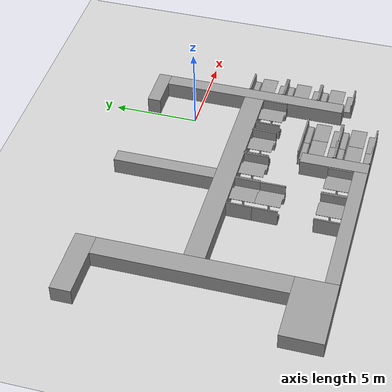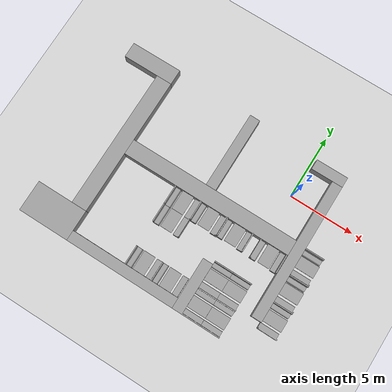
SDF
<sdf version="1.6">
 <world name="default">
  <model name="ground_plane">
   <static>1</static>
   <link name="link">
    <collision name="collision">
     <geometry><plane><normal>0 0 1</normal><size>100 100</size></plane></geometry>
     <surface><friction><ode><mu>100</mu><mu2>50</mu2></ode></friction></surface>
    </collision>
    <visual name="visual">
     <cast_shadows>0</cast_shadows>
     <geometry><plane><normal>0 0 1</normal><size>100 100</size></plane></geometry>
     <material>
      <script><uri>file://media/materials/scripts/gazebo.material</uri><name>Gazebo/Grey</name></script>
     </material>
    </visual>
   </link>
  </model>
  <model name="table_9">
   <link name="link_0">
    <inertial>
     <mass>1</mass>
     <inertia>
      <ixx>0.166667</ixx>
      <ixy>0</ixy>
      <ixz>0</ixz>
      <iyy>0.166667</iyy>
      <iyz>0</iyz>
      <izz>0.166667</izz>
     </inertia>
    </inertial>
    <visual name="visual">
     <pose>-1.9 -1.17 0 0 -0 0</pose>
     <geometry><mesh><uri>model://table/mesh/table.dae</uri><scale>0.6 0.6 0.6</scale></mesh></geometry>
     <material>
      <lighting>1</lighting>
      <script><uri>file://media/materials/scripts/gazebo.material</uri><name>Gazebo/Grey</name></script>
      <shader type="pixel"><normal_map>__default__</normal_map></shader>
      <ambient>0.3 0.3 0.3 1</ambient>
      <diffuse>0.7 0.7 0.7 1</diffuse>
      <specular>0.01 0.01 0.01 1</specular>
      <emissive>0 0 0 1</emissive>
     </material>
    </visual>
    <collision name="collision">
     <geometry><box><size>2.2 1.5 1.1</size></box></geometry>
     <surface>
      <friction>
       <ode><mu>1</mu><mu2>1</mu2><fdir1>0 0 0</fdir1><slip1>0</slip1><slip2>0</slip2></ode>
       <torsional>
        <coefficient>1</coefficient>
        <patch_radius>0</patch_radius>
        <surface_radius>0</surface_radius>
        <use_patch_radius>1</use_patch_radius>
        <ode><slip>0</slip></ode>
       </torsional>
      </friction>
      <bounce><restitution_coefficient>0</restitution_coefficient><threshold>1e+06</threshold></bounce>
      <contact>
       <collide_without_contact>0</collide_without_contact>
       <collide_without_contact_bitmask>1</collide_without_contact_bitmask>
       <collide_bitmask>1</collide_bitmask>
       <ode>
        <soft_cfm>0</soft_cfm>
        <soft_erp>0.2</soft_erp>
        <kp>1e+13</kp>
        <kd>1</kd>
        <max_vel>0.01</max_vel>
        <min_depth>0</min_depth>
       </ode>
       <bullet>
        <split_impulse>1</split_impulse>
        <split_impulse_penetration_threshold>-0.01</split_impulse_penetration_threshold>
        <soft_cfm>0</soft_cfm>
        <soft_erp>0.2</soft_erp>
        <kp>1e+13</kp>
        <kd>1</kd>
       </bullet>
      </contact>
     </surface>
    </collision>
   </link>
   <static>1</static>
   <pose>-6.26938 -4.6265 0 0 -0 0</pose>
  </model>
  <model name="table_10">
   <link name="link_0">
    <inertial>
     <mass>1</mass>
     <inertia>
      <ixx>0.166667</ixx>
      <ixy>0</ixy>
      <ixz>0</ixz>
      <iyy>0.166667</iyy>
      <iyz>0</iyz>
      <izz>0.166667</izz>
     </inertia>
    </inertial>
    <visual name="visual">
     <pose>-1.9 -1.17 0 0 -0 0</pose>
     <geometry><mesh><uri>model://table/mesh/table.dae</uri><scale>0.6 0.6 0.6</scale></mesh></geometry>
     <material>
      <lighting>1</lighting>
      <script><uri>file://media/materials/scripts/gazebo.material</uri><name>Gazebo/Grey</name></script>
      <shader type="pixel"><normal_map>__default__</normal_map></shader>
      <ambient>0.3 0.3 0.3 1</ambient>
      <diffuse>0.7 0.7 0.7 1</diffuse>
      <specular>0.01 0.01 0.01 1</specular>
      <emissive>0 0 0 1</emissive>
     </material>
    </visual>
    <collision name="collision">
     <geometry><box><size>2.2 1.5 1.1</size></box></geometry>
     <surface>
      <friction>
       <ode><mu>1</mu><mu2>1</mu2><fdir1>0 0 0</fdir1><slip1>0</slip1><slip2>0</slip2></ode>
       <torsional>
        <coefficient>1</coefficient>
        <patch_radius>0</patch_radius>
        <surface_radius>0</surface_radius>
        <use_patch_radius>1</use_patch_radius>
        <ode><slip>0</slip></ode>
       </torsional>
      </friction>
      <bounce><restitution_coefficient>0</restitution_coefficient><threshold>1e+06</threshold></bounce>
      <contact>
       <collide_without_contact>0</collide_without_contact>
       <collide_without_contact_bitmask>1</collide_without_contact_bitmask>
       <collide_bitmask>1</collide_bitmask>
       <ode>
        <soft_cfm>0</soft_cfm>
        <soft_erp>0.2</soft_erp>
        <kp>1e+13</kp>
        <kd>1</kd>
        <max_vel>0.01</max_vel>
        <min_depth>0</min_depth>
       </ode>
       <bullet>
        <split_impulse>1</split_impulse>
        <split_impulse_penetration_threshold>-0.01</split_impulse_penetration_threshold>
        <soft_cfm>0</soft_cfm>
        <soft_erp>0.2</soft_erp>
        <kp>1e+13</kp>
        <kd>1</kd>
       </bullet>
      </contact>
     </surface>
    </collision>
   </link>
   <static>1</static>
   <pose>-6.26919 -6.11225 0 0 -0 0</pose>
  </model>
  <model name="table_11">
   <link name="link_0">
    <inertial>
     <mass>1</mass>
     <inertia>
      <ixx>0.166667</ixx>
      <ixy>0</ixy>
      <ixz>0</ixz>
      <iyy>0.166667</iyy>
      <iyz>0</iyz>
      <izz>0.166667</izz>
     </inertia>
    </inertial>
    <visual name="visual">
     <pose>-1.9 -1.17 0 0 -0 0</pose>
     <geometry><mesh><uri>model://table/mesh/table.dae</uri><scale>0.6 0.6 0.6</scale></mesh></geometry>
     <material>
      <lighting>1</lighting>
      <script><uri>file://media/materials/scripts/gazebo.material</uri><name>Gazebo/Grey</name></script>
      <shader type="pixel"><normal_map>__default__</normal_map></shader>
      <ambient>0.3 0.3 0.3 1</ambient>
      <diffuse>0.7 0.7 0.7 1</diffuse>
      <specular>0.01 0.01 0.01 1</specular>
      <emissive>0 0 0 1</emissive>
     </material>
    </visual>
    <collision name="collision">
     <geometry><box><size>2.2 1.5 1.1</size></box></geometry>
     <surface>
      <friction>
       <ode><mu>1</mu><mu2>1</mu2><fdir1>0 0 0</fdir1><slip1>0</slip1><slip2>0</slip2></ode>
       <torsional>
        <coefficient>1</coefficient>
        <patch_radius>0</patch_radius>
        <surface_radius>0</surface_radius>
        <use_patch_radius>1</use_patch_radius>
        <ode><slip>0</slip></ode>
       </torsional>
      </friction>
      <bounce><restitution_coefficient>0</restitution_coefficient><threshold>1e+06</threshold></bounce>
      <contact>
       <collide_without_contact>0</collide_without_contact>
       <collide_without_contact_bitmask>1</collide_without_contact_bitmask>
       <collide_bitmask>1</collide_bitmask>
       <ode>
        <soft_cfm>0</soft_cfm>
        <soft_erp>0.2</soft_erp>
        <kp>1e+13</kp>
        <kd>1</kd>
        <max_vel>0.01</max_vel>
        <min_depth>0</min_depth>
       </ode>
       <bullet>
        <split_impulse>1</split_impulse>
        <split_impulse_penetration_threshold>-0.01</split_impulse_penetration_threshold>
        <soft_cfm>0</soft_cfm>
        <soft_erp>0.2</soft_erp>
        <kp>1e+13</kp>
        <kd>1</kd>
       </bullet>
      </contact>
     </surface>
    </collision>
   </link>
   <static>1</static>
   <pose>-6.26952 -9.62125 0 0 -0 0</pose>
  </model>
  <model name="table_12">
   <link name="link_0">
    <inertial>
     <mass>1</mass>
     <inertia>
      <ixx>0.166667</ixx>
      <ixy>0</ixy>
      <ixz>0</ixz>
      <iyy>0.166667</iyy>
      <iyz>0</iyz>
      <izz>0.166667</izz>
     </inertia>
    </inertial>
    <visual name="visual">
     <pose>-1.9 -1.17 0 0 -0 0</pose>
     <geometry><mesh><uri>model://table/mesh/table.dae</uri><scale>0.6 0.6 0.6</scale></mesh></geometry>
     <material>
      <lighting>1</lighting>
      <script><uri>file://media/materials/scripts/gazebo.material</uri><name>Gazebo/Grey</name></script>
      <shader type="pixel"><normal_map>__default__</normal_map></shader>
      <ambient>0.3 0.3 0.3 1</ambient>
      <diffuse>0.7 0.7 0.7 1</diffuse>
      <specular>0.01 0.01 0.01 1</specular>
      <emissive>0 0 0 1</emissive>
     </material>
    </visual>
    <collision name="collision">
     <geometry><box><size>2.2 1.5 1.1</size></box></geometry>
     <surface>
      <friction>
       <ode><mu>1</mu><mu2>1</mu2><fdir1>0 0 0</fdir1><slip1>0</slip1><slip2>0</slip2></ode>
       <torsional>
        <coefficient>1</coefficient>
        <patch_radius>0</patch_radius>
        <surface_radius>0</surface_radius>
        <use_patch_radius>1</use_patch_radius>
        <ode><slip>0</slip></ode>
       </torsional>
      </friction>
      <bounce><restitution_coefficient>0</restitution_coefficient><threshold>1e+06</threshold></bounce>
      <contact>
       <collide_without_contact>0</collide_without_contact>
       <collide_without_contact_bitmask>1</collide_without_contact_bitmask>
       <collide_bitmask>1</collide_bitmask>
       <ode>
        <soft_cfm>0</soft_cfm>
        <soft_erp>0.2</soft_erp>
        <kp>1e+13</kp>
        <kd>1</kd>
        <max_vel>0.01</max_vel>
        <min_depth>0</min_depth>
       </ode>
       <bullet>
        <split_impulse>1</split_impulse>
        <split_impulse_penetration_threshold>-0.01</split_impulse_penetration_threshold>
        <soft_cfm>0</soft_cfm>
        <soft_erp>0.2</soft_erp>
        <kp>1e+13</kp>
        <kd>1</kd>
       </bullet>
      </contact>
     </surface>
    </collision>
   </link>
   <static>1</static>
   <pose>-4.12488 -9.62018 0 0 -0 0</pose>
  </model>
  <model name="table_13">
   <link name="link_0">
    <inertial>
     <mass>1</mass>
     <inertia>
      <ixx>0.166667</ixx>
      <ixy>0</ixy>
      <ixz>0</ixz>
      <iyy>0.166667</iyy>
      <iyz>0</iyz>
      <izz>0.166667</izz>
     </inertia>
    </inertial>
    <visual name="visual">
     <pose>-1.9 -1.17 0 0 -0 0</pose>
     <geometry><mesh><uri>model://table/mesh/table.dae</uri><scale>0.6 0.6 0.6</scale></mesh></geometry>
     <material>
      <lighting>1</lighting>
      <script><uri>file://media/materials/scripts/gazebo.material</uri><name>Gazebo/Grey</name></script>
      <shader type="pixel"><normal_map>__default__</normal_map></shader>
      <ambient>0.3 0.3 0.3 1</ambient>
      <diffuse>0.7 0.7 0.7 1</diffuse>
      <specular>0.01 0.01 0.01 1</specular>
      <emissive>0 0 0 1</emissive>
     </material>
    </visual>
    <collision name="collision">
     <geometry><box><size>2.2 1.5 1.1</size></box></geometry>
     <surface>
      <friction>
       <ode><mu>1</mu><mu2>1</mu2><fdir1>0 0 0</fdir1><slip1>0</slip1><slip2>0</slip2></ode>
       <torsional>
        <coefficient>1</coefficient>
        <patch_radius>0</patch_radius>
        <surface_radius>0</surface_radius>
        <use_patch_radius>1</use_patch_radius>
        <ode><slip>0</slip></ode>
       </torsional>
      </friction>
      <bounce><restitution_coefficient>0</restitution_coefficient><threshold>1e+06</threshold></bounce>
      <contact>
       <collide_without_contact>0</collide_without_contact>
       <collide_without_contact_bitmask>1</collide_without_contact_bitmask>
       <collide_bitmask>1</collide_bitmask>
       <ode>
        <soft_cfm>0</soft_cfm>
        <soft_erp>0.2</soft_erp>
        <kp>1e+13</kp>
        <kd>1</kd>
        <max_vel>0.01</max_vel>
        <min_depth>0</min_depth>
       </ode>
       <bullet>
        <split_impulse>1</split_impulse>
        <split_impulse_penetration_threshold>-0.01</split_impulse_penetration_threshold>
        <soft_cfm>0</soft_cfm>
        <soft_erp>0.2</soft_erp>
        <kp>1e+13</kp>
        <kd>1</kd>
       </bullet>
      </contact>
     </surface>
    </collision>
   </link>
   <static>1</static>
   <pose>-4.12506 -4.62605 0 0 -0 0</pose>
  </model>
  <model name="path">
   <link name="Wall_18">
    <pose>-12.5035 0.003409 0 0 -0 1.5708</pose>
    <inertial>
     <mass>1</mass>
     <inertia><ixx>1</ixx><ixy>0</ixy><ixz>0</ixz><iyy>1</iyy><iyz>0</iyz><izz>1</izz></inertia>
    </inertial>
    <visual name="Wall_18_Visual">
     <pose>0 0 0.5 0 -0 0</pose>
     <geometry><box><size>11 1.2 1</size></box></geometry>
     <material>
      <script><uri>file://media/materials/scripts/gazebo.material</uri><name>Gazebo/Grey</name></script>
      <ambient>1 1 1 1</ambient>
      <shader type="pixel"><normal_map>__default__</normal_map></shader>
      <diffuse>0.7 0.7 0.7 1</diffuse>
      <specular>0.01 0.01 0.01 1</specular>
      <emissive>0 0 0 1</emissive>
     </material>
     <meta><layer>0</layer></meta>
    </visual>
    <collision name="Wall_18_Collision">
     <pose>0 0 0.5 0 -0 0</pose>
     <geometry><box><size>11 1.2 1</size></box></geometry>
     <surface>
      <friction>
       <ode><mu>1</mu><mu2>1</mu2><fdir1>0 0 0</fdir1><slip1>0</slip1><slip2>0</slip2></ode>
       <torsional>
        <coefficient>1</coefficient>
        <patch_radius>0</patch_radius>
        <surface_radius>0</surface_radius>
        <use_patch_radius>1</use_patch_radius>
        <ode><slip>0</slip></ode>
       </torsional>
      </friction>
      <bounce><restitution_coefficient>0</restitution_coefficient><threshold>1e+06</threshold></bounce>
      <contact>
       <collide_without_contact>0</collide_without_contact>
       <collide_without_contact_bitmask>1</collide_without_contact_bitmask>
       <collide_bitmask>1</collide_bitmask>
       <ode>
        <soft_cfm>0</soft_cfm>
        <soft_erp>0.2</soft_erp>
        <kp>1e+13</kp>
        <kd>1</kd>
        <max_vel>0.01</max_vel>
        <min_depth>0</min_depth>
       </ode>
       <bullet>
        <split_impulse>1</split_impulse>
        <split_impulse_penetration_threshold>-0.01</split_impulse_penetration_threshold>
        <soft_cfm>0</soft_cfm>
        <soft_erp>0.2</soft_erp>
        <kp>1e+13</kp>
        <kd>1</kd>
       </bullet>
      </contact>
     </surface>
    </collision>
   </link>
   <link name="Wall_20">
    <pose>-5.15319 -0.016904 0 0 0 -0.000489</pose>
    <inertial>
     <mass>1</mass>
     <inertia><ixx>1</ixx><ixy>0</ixy><ixz>0</ixz><iyy>1</iyy><iyz>0</iyz><izz>1</izz></inertia>
    </inertial>
    <visual name="Wall_20_Visual">
     <pose>0 0 0.5 0 -0 0</pose>
     <geometry><box><size>13.5 1.2 1</size></box></geometry>
     <material>
      <script><uri>file://media/materials/scripts/gazebo.material</uri><name>Gazebo/Grey</name></script>
      <ambient>1 1 1 1</ambient>
      <shader type="pixel"><normal_map>__default__</normal_map></shader>
      <diffuse>0.7 0.7 0.7 1</diffuse>
      <specular>0.01 0.01 0.01 1</specular>
      <emissive>0 0 0 1</emissive>
     </material>
     <meta><layer>0</layer></meta>
    </visual>
    <collision name="Wall_20_Collision">
     <pose>0 0 0.5 0 -0 0</pose>
     <geometry><box><size>13.5 1.2 1</size></box></geometry>
     <surface>
      <friction>
       <ode><mu>1</mu><mu2>1</mu2><fdir1>0 0 0</fdir1><slip1>0</slip1><slip2>0</slip2></ode>
       <torsional>
        <coefficient>1</coefficient>
        <patch_radius>0</patch_radius>
        <surface_radius>0</surface_radius>
        <use_patch_radius>1</use_patch_radius>
        <ode><slip>0</slip></ode>
       </torsional>
      </friction>
      <bounce><restitution_coefficient>0</restitution_coefficient><threshold>1e+06</threshold></bounce>
      <contact>
       <collide_without_contact>0</collide_without_contact>
       <collide_without_contact_bitmask>1</collide_without_contact_bitmask>
       <collide_bitmask>1</collide_bitmask>
       <ode>
        <soft_cfm>0</soft_cfm>
        <soft_erp>0.2</soft_erp>
        <kp>1e+13</kp>
        <kd>1</kd>
        <max_vel>0.01</max_vel>
        <min_depth>0</min_depth>
       </ode>
       <bullet>
        <split_impulse>1</split_impulse>
        <split_impulse_penetration_threshold>-0.01</split_impulse_penetration_threshold>
        <soft_cfm>0</soft_cfm>
        <soft_erp>0.2</soft_erp>
        <kp>1e+13</kp>
        <kd>1</kd>
       </bullet>
      </contact>
     </surface>
    </collision>
   </link>
   <link name="Wall_21">
    <pose>1.99706 0.024718 0 0 -0 1.57072</pose>
    <inertial>
     <mass>1</mass>
     <inertia><ixx>1</ixx><ixy>0</ixy><ixz>0</ixz><iyy>1</iyy><iyz>0</iyz><izz>1</izz></inertia>
    </inertial>
    <visual name="Wall_21_Visual">
     <pose>0 0 0.5 0 -0 0</pose>
     <geometry><box><size>11 0.8 1</size></box></geometry>
     <material>
      <script><uri>file://media/materials/scripts/gazebo.material</uri><name>Gazebo/Grey</name></script>
      <ambient>1 1 1 1</ambient>
      <shader type="pixel"><normal_map>__default__</normal_map></shader>
      <diffuse>0.7 0.7 0.7 1</diffuse>
      <specular>0.01 0.01 0.01 1</specular>
      <emissive>0 0 0 1</emissive>
     </material>
     <meta><layer>0</layer></meta>
    </visual>
    <collision name="Wall_21_Collision">
     <pose>0 0 0.5 0 -0 0</pose>
     <geometry><box><size>11 0.8 1</size></box></geometry>
     <surface>
      <friction>
       <ode><mu>1</mu><mu2>1</mu2><fdir1>0 0 0</fdir1><slip1>0</slip1><slip2>0</slip2></ode>
       <torsional>
        <coefficient>1</coefficient>
        <patch_radius>0</patch_radius>
        <surface_radius>0</surface_radius>
        <use_patch_radius>1</use_patch_radius>
        <ode><slip>0</slip></ode>
       </torsional>
      </friction>
      <bounce><restitution_coefficient>0</restitution_coefficient><threshold>1e+06</threshold></bounce>
      <contact>
       <collide_without_contact>0</collide_without_contact>
       <collide_without_contact_bitmask>1</collide_without_contact_bitmask>
       <collide_bitmask>1</collide_bitmask>
       <ode>
        <soft_cfm>0</soft_cfm>
        <soft_erp>0.2</soft_erp>
        <kp>1e+13</kp>
        <kd>1</kd>
        <max_vel>0.01</max_vel>
        <min_depth>0</min_depth>
       </ode>
       <bullet>
        <split_impulse>1</split_impulse>
        <split_impulse_penetration_threshold>-0.01</split_impulse_penetration_threshold>
        <soft_cfm>0</soft_cfm>
        <soft_erp>0.2</soft_erp>
        <kp>1e+13</kp>
        <kd>1</kd>
       </bullet>
      </contact>
     </surface>
    </collision>
   </link>
   <link name="Wall_25">
    <pose>-5.42538 3.58343 0 0 -0 1.5708</pose>
    <inertial>
     <mass>1</mass>
     <inertia><ixx>1</ixx><ixy>0</ixy><ixz>0</ixz><iyy>1</iyy><iyz>0</iyz><izz>1</izz></inertia>
    </inertial>
    <visual name="Wall_25_Visual">
     <pose>0 0 0.5 0 -0 0</pose>
     <geometry><box><size>6 0.8 1</size></box></geometry>
     <material>
      <script><uri>file://media/materials/scripts/gazebo.material</uri><name>Gazebo/Grey</name></script>
      <ambient>1 1 1 1</ambient>
      <shader type="pixel"><normal_map>__default__</normal_map></shader>
      <diffuse>0.7 0.7 0.7 1</diffuse>
      <specular>0.01 0.01 0.01 1</specular>
      <emissive>0 0 0 1</emissive>
     </material>
     <meta><layer>0</layer></meta>
    </visual>
    <collision name="Wall_25_Collision">
     <pose>0 0 0.5 0 -0 0</pose>
     <geometry><box><size>6 0.8 1</size></box></geometry>
     <surface>
      <friction>
       <ode><mu>1</mu><mu2>1</mu2><fdir1>0 0 0</fdir1><slip1>0</slip1><slip2>0</slip2></ode>
       <torsional>
        <coefficient>1</coefficient>
        <patch_radius>0</patch_radius>
        <surface_radius>0</surface_radius>
        <use_patch_radius>1</use_patch_radius>
        <ode><slip>0</slip></ode>
       </torsional>
      </friction>
      <bounce><restitution_coefficient>0</restitution_coefficient><threshold>1e+06</threshold></bounce>
      <contact>
       <collide_without_contact>0</collide_without_contact>
       <collide_without_contact_bitmask>1</collide_without_contact_bitmask>
       <collide_bitmask>1</collide_bitmask>
       <ode>
        <soft_cfm>0</soft_cfm>
        <soft_erp>0.2</soft_erp>
        <kp>1e+13</kp>
        <kd>1</kd>
        <max_vel>0.01</max_vel>
        <min_depth>0</min_depth>
       </ode>
       <bullet>
        <split_impulse>1</split_impulse>
        <split_impulse_penetration_threshold>-0.01</split_impulse_penetration_threshold>
        <soft_cfm>0</soft_cfm>
        <soft_erp>0.2</soft_erp>
        <kp>1e+13</kp>
        <kd>1</kd>
       </bullet>
      </contact>
     </surface>
    </collision>
   </link>
   <link name="Wall_27">
    <pose>-7.5785 -7.49658 0 0 -0 0</pose>
    <inertial>
     <mass>1</mass>
     <inertia><ixx>1</ixx><ixy>0</ixy><ixz>0</ixz><iyy>1</iyy><iyz>0</iyz><izz>1</izz></inertia>
    </inertial>
    <visual name="Wall_27_Visual">
     <pose>0 0 0.5 0 -0 0</pose>
     <geometry><box><size>8.65 0.8 1</size></box></geometry>
     <material>
      <script><uri>file://media/materials/scripts/gazebo.material</uri><name>Gazebo/Grey</name></script>
      <ambient>1 1 1 1</ambient>
      <shader type="pixel"><normal_map>__default__</normal_map></shader>
      <diffuse>0.7 0.7 0.7 1</diffuse>
      <specular>0.01 0.01 0.01 1</specular>
      <emissive>0 0 0 1</emissive>
     </material>
     <meta><layer>0</layer></meta>
    </visual>
    <collision name="Wall_27_Collision">
     <pose>0 0 0.5 0 -0 0</pose>
     <geometry><box><size>8.65 0.8 1</size></box></geometry>
     <surface>
      <friction>
       <ode><mu>1</mu><mu2>1</mu2><fdir1>0 0 0</fdir1><slip1>0</slip1><slip2>0</slip2></ode>
       <torsional>
        <coefficient>1</coefficient>
        <patch_radius>0</patch_radius>
        <surface_radius>0</surface_radius>
        <use_patch_radius>1</use_patch_radius>
        <ode><slip>0</slip></ode>
       </torsional>
      </friction>
      <bounce><restitution_coefficient>0</restitution_coefficient><threshold>1e+06</threshold></bounce>
      <contact>
       <collide_without_contact>0</collide_without_contact>
       <collide_without_contact_bitmask>1</collide_without_contact_bitmask>
       <collide_bitmask>1</collide_bitmask>
       <ode>
        <soft_cfm>0</soft_cfm>
        <soft_erp>0.2</soft_erp>
        <kp>1e+13</kp>
        <kd>1</kd>
        <max_vel>0.01</max_vel>
        <min_depth>0</min_depth>
       </ode>
       <bullet>
        <split_impulse>1</split_impulse>
        <split_impulse_penetration_threshold>-0.01</split_impulse_penetration_threshold>
        <soft_cfm>0</soft_cfm>
        <soft_erp>0.2</soft_erp>
        <kp>1e+13</kp>
        <kd>1</kd>
       </bullet>
      </contact>
     </surface>
    </collision>
   </link>
   <link name="Wall_31">
    <pose>-2.85351 -5.89658 0 0 0 -1.57079</pose>
    <inertial>
     <mass>1</mass>
     <inertia><ixx>1</ixx><ixy>0</ixy><ixz>0</ixz><iyy>1</iyy><iyz>0</iyz><izz>1</izz></inertia>
    </inertial>
    <visual name="Wall_31_Visual">
     <pose>0 0 0.5 0 -0 0</pose>
     <geometry><box><size>4 0.8 1</size></box></geometry>
     <material>
      <script><uri>file://media/materials/scripts/gazebo.material</uri><name>Gazebo/Grey</name></script>
      <ambient>1 1 1 1</ambient>
      <shader type="pixel"><normal_map>__default__</normal_map></shader>
      <diffuse>0.7 0.7 0.7 1</diffuse>
      <specular>0.01 0.01 0.01 1</specular>
      <emissive>0 0 0 1</emissive>
     </material>
     <meta><layer>0</layer></meta>
    </visual>
    <collision name="Wall_31_Collision">
     <pose>0 0 0.5 0 -0 0</pose>
     <geometry><box><size>4 0.8 1</size></box></geometry>
     <surface>
      <friction>
       <ode><mu>1</mu><mu2>1</mu2><fdir1>0 0 0</fdir1><slip1>0</slip1><slip2>0</slip2></ode>
       <torsional>
        <coefficient>1</coefficient>
        <patch_radius>0</patch_radius>
        <surface_radius>0</surface_radius>
        <use_patch_radius>1</use_patch_radius>
        <ode><slip>0</slip></ode>
       </torsional>
      </friction>
      <bounce><restitution_coefficient>0</restitution_coefficient><threshold>1e+06</threshold></bounce>
      <contact>
       <collide_without_contact>0</collide_without_contact>
       <collide_without_contact_bitmask>1</collide_without_contact_bitmask>
       <collide_bitmask>1</collide_bitmask>
       <ode>
        <soft_cfm>0</soft_cfm>
        <soft_erp>0.2</soft_erp>
        <kp>1e+13</kp>
        <kd>1</kd>
        <max_vel>0.01</max_vel>
        <min_depth>0</min_depth>
       </ode>
       <bullet>
        <split_impulse>1</split_impulse>
        <split_impulse_penetration_threshold>-0.01</split_impulse_penetration_threshold>
        <soft_cfm>0</soft_cfm>
        <soft_erp>0.2</soft_erp>
        <kp>1e+13</kp>
        <kd>1</kd>
       </bullet>
      </contact>
     </surface>
    </collision>
   </link>
   <link name="Wall_35">
    <pose>1.1473 5.91911 0 0 -0 0.000465</pose>
    <inertial>
     <mass>1</mass>
     <inertia><ixx>1</ixx><ixy>0</ixy><ixz>0</ixz><iyy>1</iyy><iyz>0</iyz><izz>1</izz></inertia>
    </inertial>
    <visual name="Wall_35_Visual">
     <pose>0 0 0.5 0 -0 0</pose>
     <geometry><box><size>2.5 0.79 1</size></box></geometry>
     <material>
      <script><uri>file://media/materials/scripts/gazebo.material</uri><name>Gazebo/Grey</name></script>
      <ambient>1 1 1 1</ambient>
      <shader type="pixel"><normal_map>__default__</normal_map></shader>
      <diffuse>0.7 0.7 0.7 1</diffuse>
      <specular>0.01 0.01 0.01 1</specular>
      <emissive>0 0 0 1</emissive>
     </material>
     <meta><layer>0</layer></meta>
    </visual>
    <collision name="Wall_35_Collision">
     <pose>0 0 0.5 0 -0 0</pose>
     <geometry><box><size>2.5 0.8 1</size></box></geometry>
     <surface>
      <friction>
       <ode><mu>1</mu><mu2>1</mu2><fdir1>0 0 0</fdir1><slip1>0</slip1><slip2>0</slip2></ode>
       <torsional>
        <coefficient>1</coefficient>
        <patch_radius>0</patch_radius>
        <surface_radius>0</surface_radius>
        <use_patch_radius>1</use_patch_radius>
        <ode><slip>0</slip></ode>
       </torsional>
      </friction>
      <bounce><restitution_coefficient>0</restitution_coefficient><threshold>1e+06</threshold></bounce>
      <contact>
       <collide_without_contact>0</collide_without_contact>
       <collide_without_contact_bitmask>1</collide_without_contact_bitmask>
       <collide_bitmask>1</collide_bitmask>
       <ode>
        <soft_cfm>0</soft_cfm>
        <soft_erp>0.2</soft_erp>
        <kp>1e+13</kp>
        <kd>1</kd>
        <max_vel>0.01</max_vel>
        <min_depth>0</min_depth>
       </ode>
       <bullet>
        <split_impulse>1</split_impulse>
        <split_impulse_penetration_threshold>-0.01</split_impulse_penetration_threshold>
        <soft_cfm>0</soft_cfm>
        <soft_erp>0.2</soft_erp>
        <kp>1e+13</kp>
        <kd>1</kd>
       </bullet>
      </contact>
     </surface>
    </collision>
   </link>
   <link name="Wall_44">
    <pose>-13.9035 6.10342 0 0 -0 3.14159</pose>
    <inertial>
     <mass>1</mass>
     <inertia><ixx>1</ixx><ixy>0</ixy><ixz>0</ixz><iyy>1</iyy><iyz>0</iyz><izz>1</izz></inertia>
    </inertial>
    <visual name="Wall_44_Visual">
     <pose>0 0 0.5 0 -0 0</pose>
     <geometry><box><size>4 1.2 1</size></box></geometry>
     <material>
      <script><uri>file://media/materials/scripts/gazebo.material</uri><name>Gazebo/Grey</name></script>
      <ambient>1 1 1 1</ambient>
      <shader type="pixel"><normal_map>__default__</normal_map></shader>
      <diffuse>0.7 0.7 0.7 1</diffuse>
      <specular>0.01 0.01 0.01 1</specular>
      <emissive>0 0 0 1</emissive>
     </material>
     <meta><layer>0</layer></meta>
    </visual>
    <collision name="Wall_44_Collision">
     <pose>0 0 0.5 0 -0 0</pose>
     <geometry><box><size>4 1.2 1</size></box></geometry>
     <surface>
      <friction>
       <ode><mu>1</mu><mu2>1</mu2><fdir1>0 0 0</fdir1><slip1>0</slip1><slip2>0</slip2></ode>
       <torsional>
        <coefficient>1</coefficient>
        <patch_radius>0</patch_radius>
        <surface_radius>0</surface_radius>
        <use_patch_radius>1</use_patch_radius>
        <ode><slip>0</slip></ode>
       </torsional>
      </friction>
      <bounce><restitution_coefficient>0</restitution_coefficient><threshold>1e+06</threshold></bounce>
      <contact>
       <collide_without_contact>0</collide_without_contact>
       <collide_without_contact_bitmask>1</collide_without_contact_bitmask>
       <collide_bitmask>1</collide_bitmask>
       <ode>
        <soft_cfm>0</soft_cfm>
        <soft_erp>0.2</soft_erp>
        <kp>1e+13</kp>
        <kd>1</kd>
        <max_vel>0.01</max_vel>
        <min_depth>0</min_depth>
       </ode>
       <bullet>
        <split_impulse>1</split_impulse>
        <split_impulse_penetration_threshold>-0.01</split_impulse_penetration_threshold>
        <soft_cfm>0</soft_cfm>
        <soft_erp>0.2</soft_erp>
        <kp>1e+13</kp>
        <kd>1</kd>
       </bullet>
      </contact>
     </surface>
    </collision>
   </link>
   <link name="Wall_62">
    <pose>-13.9035 -6.69658 0 0 -0 0</pose>
    <inertial>
     <mass>1</mass>
     <inertia><ixx>1</ixx><ixy>0</ixy><ixz>0</ixz><iyy>1</iyy><iyz>0</iyz><izz>1</izz></inertia>
    </inertial>
    <visual name="Wall_62_Visual">
     <pose>0 0 0.5 0 -0 0</pose>
     <geometry><box><size>4 2.4 1</size></box></geometry>
     <material>
      <script><uri>file://media/materials/scripts/gazebo.material</uri><name>Gazebo/Grey</name></script>
      <ambient>1 1 1 1</ambient>
      <shader type="pixel"><normal_map>__default__</normal_map></shader>
      <diffuse>0.7 0.7 0.7 1</diffuse>
      <specular>0.01 0.01 0.01 1</specular>
      <emissive>0 0 0 1</emissive>
     </material>
     <meta><layer>0</layer></meta>
    </visual>
    <collision name="Wall_62_Collision">
     <pose>0 0 0.5 0 -0 0</pose>
     <geometry><box><size>4 2.4 1</size></box></geometry>
     <surface>
      <friction>
       <ode><mu>1</mu><mu2>1</mu2><fdir1>0 0 0</fdir1><slip1>0</slip1><slip2>0</slip2></ode>
       <torsional>
        <coefficient>1</coefficient>
        <patch_radius>0</patch_radius>
        <surface_radius>0</surface_radius>
        <use_patch_radius>1</use_patch_radius>
        <ode><slip>0</slip></ode>
       </torsional>
      </friction>
      <bounce><restitution_coefficient>0</restitution_coefficient><threshold>1e+06</threshold></bounce>
      <contact>
       <collide_without_contact>0</collide_without_contact>
       <collide_without_contact_bitmask>1</collide_without_contact_bitmask>
       <collide_bitmask>1</collide_bitmask>
       <ode>
        <soft_cfm>0</soft_cfm>
        <soft_erp>0.2</soft_erp>
        <kp>1e+13</kp>
        <kd>1</kd>
        <max_vel>0.01</max_vel>
        <min_depth>0</min_depth>
       </ode>
       <bullet>
        <split_impulse>1</split_impulse>
        <split_impulse_penetration_threshold>-0.01</split_impulse_penetration_threshold>
        <soft_cfm>0</soft_cfm>
        <soft_erp>0.2</soft_erp>
        <kp>1e+13</kp>
        <kd>1</kd>
       </bullet>
      </contact>
     </surface>
    </collision>
   </link>
   <static>1</static>
   <pose>0.2678 -3.26355 0 0 -0 0</pose>
  </model>
  <model name="table_20">
   <link name="link_0">
    <inertial>
     <mass>1</mass>
     <inertia>
      <ixx>0.166667</ixx>
      <ixy>0</ixy>
      <ixz>0</ixz>
      <iyy>0.166667</iyy>
      <iyz>0</iyz>
      <izz>0.166667</izz>
     </inertia>
    </inertial>
    <visual name="visual">
     <pose>-1.9 -1.17 0 0 -0 0</pose>
     <geometry><mesh><uri>model://table/mesh/table.dae</uri><scale>0.6 0.6 0.6</scale></mesh></geometry>
     <material>
      <lighting>1</lighting>
      <script><uri>file://media/materials/scripts/gazebo.material</uri><name>Gazebo/Grey</name></script>
      <shader type="pixel"><normal_map>__default__</normal_map></shader>
      <ambient>0.3 0.3 0.3 1</ambient>
      <diffuse>0.7 0.7 0.7 1</diffuse>
      <specular>0.01 0.01 0.01 1</specular>
      <emissive>0 0 0 1</emissive>
     </material>
    </visual>
    <collision name="collision">
     <geometry><box><size>2.2 1.5 1.1</size></box></geometry>
     <surface>
      <friction>
       <ode><mu>1</mu><mu2>1</mu2><fdir1>0 0 0</fdir1><slip1>0</slip1><slip2>0</slip2></ode>
       <torsional>
        <coefficient>1</coefficient>
        <patch_radius>0</patch_radius>
        <surface_radius>0</surface_radius>
        <use_patch_radius>1</use_patch_radius>
        <ode><slip>0</slip></ode>
       </torsional>
      </friction>
      <bounce><restitution_coefficient>0</restitution_coefficient><threshold>1e+06</threshold></bounce>
      <contact>
       <collide_without_contact>0</collide_without_contact>
       <collide_without_contact_bitmask>1</collide_without_contact_bitmask>
       <collide_bitmask>1</collide_bitmask>
       <ode>
        <soft_cfm>0</soft_cfm>
        <soft_erp>0.2</soft_erp>
        <kp>1e+13</kp>
        <kd>1</kd>
        <max_vel>0.01</max_vel>
        <min_depth>0</min_depth>
       </ode>
       <bullet>
        <split_impulse>1</split_impulse>
        <split_impulse_penetration_threshold>-0.01</split_impulse_penetration_threshold>
        <soft_cfm>0</soft_cfm>
        <soft_erp>0.2</soft_erp>
        <kp>1e+13</kp>
        <kd>1</kd>
       </bullet>
      </contact>
     </surface>
    </collision>
   </link>
   <static>1</static>
   <pose>-1.43673 -7.93509 0 0 -0 1.5708</pose>
  </model>
  <model name="table_21">
   <link name="link_0">
    <inertial>
     <mass>1</mass>
     <inertia>
      <ixx>0.166667</ixx>
      <ixy>0</ixy>
      <ixz>0</ixz>
      <iyy>0.166667</iyy>
      <iyz>0</iyz>
      <izz>0.166667</izz>
     </inertia>
    </inertial>
    <visual name="visual">
     <pose>-1.9 -1.17 0 0 -0 0</pose>
     <geometry><mesh><uri>model://table/mesh/table.dae</uri><scale>0.6 0.6 0.6</scale></mesh></geometry>
     <material>
      <lighting>1</lighting>
      <script><uri>file://media/materials/scripts/gazebo.material</uri><name>Gazebo/Grey</name></script>
      <shader type="pixel"><normal_map>__default__</normal_map></shader>
      <ambient>0.3 0.3 0.3 1</ambient>
      <diffuse>0.7 0.7 0.7 1</diffuse>
      <specular>0.01 0.01 0.01 1</specular>
      <emissive>0 0 0 1</emissive>
     </material>
    </visual>
    <collision name="collision">
     <geometry><box><size>2.2 1.5 1.1</size></box></geometry>
     <surface>
      <friction>
       <ode><mu>1</mu><mu2>1</mu2><fdir1>0 0 0</fdir1><slip1>0</slip1><slip2>0</slip2></ode>
       <torsional>
        <coefficient>1</coefficient>
        <patch_radius>0</patch_radius>
        <surface_radius>0</surface_radius>
        <use_patch_radius>1</use_patch_radius>
        <ode><slip>0</slip></ode>
       </torsional>
      </friction>
      <bounce><restitution_coefficient>0</restitution_coefficient><threshold>1e+06</threshold></bounce>
      <contact>
       <collide_without_contact>0</collide_without_contact>
       <collide_without_contact_bitmask>1</collide_without_contact_bitmask>
       <collide_bitmask>1</collide_bitmask>
       <ode>
        <soft_cfm>0</soft_cfm>
        <soft_erp>0.2</soft_erp>
        <kp>1e+13</kp>
        <kd>1</kd>
        <max_vel>0.01</max_vel>
        <min_depth>0</min_depth>
       </ode>
       <bullet>
        <split_impulse>1</split_impulse>
        <split_impulse_penetration_threshold>-0.01</split_impulse_penetration_threshold>
        <soft_cfm>0</soft_cfm>
        <soft_erp>0.2</soft_erp>
        <kp>1e+13</kp>
        <kd>1</kd>
       </bullet>
      </contact>
     </surface>
    </collision>
   </link>
   <static>1</static>
   <pose>0.049456 -7.93738 0 0 -0 1.5708</pose>
  </model>
  <model name="table_22">
   <link name="link_0">
    <inertial>
     <mass>1</mass>
     <inertia>
      <ixx>0.166667</ixx>
      <ixy>0</ixy>
      <ixz>0</ixz>
      <iyy>0.166667</iyy>
      <iyz>0</iyz>
      <izz>0.166667</izz>
     </inertia>
    </inertial>
    <visual name="visual">
     <pose>-1.9 -1.17 0 0 -0 0</pose>
     <geometry><mesh><uri>model://table/mesh/table.dae</uri><scale>0.6 0.6 0.6</scale></mesh></geometry>
     <material>
      <lighting>1</lighting>
      <script><uri>file://media/materials/scripts/gazebo.material</uri><name>Gazebo/Grey</name></script>
      <shader type="pixel"><normal_map>__default__</normal_map></shader>
      <ambient>0.3 0.3 0.3 1</ambient>
      <diffuse>0.7 0.7 0.7 1</diffuse>
      <specular>0.01 0.01 0.01 1</specular>
      <emissive>0 0 0 1</emissive>
     </material>
    </visual>
    <collision name="collision">
     <geometry><box><size>2.2 1.5 1.1</size></box></geometry>
     <surface>
      <friction>
       <ode><mu>1</mu><mu2>1</mu2><fdir1>0 0 0</fdir1><slip1>0</slip1><slip2>0</slip2></ode>
       <torsional>
        <coefficient>1</coefficient>
        <patch_radius>0</patch_radius>
        <surface_radius>0</surface_radius>
        <use_patch_radius>1</use_patch_radius>
        <ode><slip>0</slip></ode>
       </torsional>
      </friction>
      <bounce><restitution_coefficient>0</restitution_coefficient><threshold>1e+06</threshold></bounce>
      <contact>
       <collide_without_contact>0</collide_without_contact>
       <collide_without_contact_bitmask>1</collide_without_contact_bitmask>
       <collide_bitmask>1</collide_bitmask>
       <ode>
        <soft_cfm>0</soft_cfm>
        <soft_erp>0.2</soft_erp>
        <kp>1e+13</kp>
        <kd>1</kd>
        <max_vel>0.01</max_vel>
        <min_depth>0</min_depth>
       </ode>
       <bullet>
        <split_impulse>1</split_impulse>
        <split_impulse_penetration_threshold>-0.01</split_impulse_penetration_threshold>
        <soft_cfm>0</soft_cfm>
        <soft_erp>0.2</soft_erp>
        <kp>1e+13</kp>
        <kd>1</kd>
       </bullet>
      </contact>
     </surface>
    </collision>
   </link>
   <static>1</static>
   <pose>-1.43697 -10.0792 0 0 -0 1.5708</pose>
  </model>
  <model name="table_23">
   <link name="link_0">
    <inertial>
     <mass>1</mass>
     <inertia>
      <ixx>0.166667</ixx>
      <ixy>0</ixy>
      <ixz>0</ixz>
      <iyy>0.166667</iyy>
      <iyz>0</iyz>
      <izz>0.166667</izz>
     </inertia>
    </inertial>
    <visual name="visual">
     <pose>-1.9 -1.17 0 0 -0 0</pose>
     <geometry><mesh><uri>model://table/mesh/table.dae</uri><scale>0.6 0.6 0.6</scale></mesh></geometry>
     <material>
      <lighting>1</lighting>
      <script><uri>file://media/materials/scripts/gazebo.material</uri><name>Gazebo/Grey</name></script>
      <shader type="pixel"><normal_map>__default__</normal_map></shader>
      <ambient>0.3 0.3 0.3 1</ambient>
      <diffuse>0.7 0.7 0.7 1</diffuse>
      <specular>0.01 0.01 0.01 1</specular>
      <emissive>0 0 0 1</emissive>
     </material>
    </visual>
    <collision name="collision">
     <geometry><box><size>2.2 1.5 1.1</size></box></geometry>
     <surface>
      <friction>
       <ode><mu>1</mu><mu2>1</mu2><fdir1>0 0 0</fdir1><slip1>0</slip1><slip2>0</slip2></ode>
       <torsional>
        <coefficient>1</coefficient>
        <patch_radius>0</patch_radius>
        <surface_radius>0</surface_radius>
        <use_patch_radius>1</use_patch_radius>
        <ode><slip>0</slip></ode>
       </torsional>
      </friction>
      <bounce><restitution_coefficient>0</restitution_coefficient><threshold>1e+06</threshold></bounce>
      <contact>
       <collide_without_contact>0</collide_without_contact>
       <collide_without_contact_bitmask>1</collide_without_contact_bitmask>
       <collide_bitmask>1</collide_bitmask>
       <ode>
        <soft_cfm>0</soft_cfm>
        <soft_erp>0.2</soft_erp>
        <kp>1e+13</kp>
        <kd>1</kd>
        <max_vel>0.01</max_vel>
        <min_depth>0</min_depth>
       </ode>
       <bullet>
        <split_impulse>1</split_impulse>
        <split_impulse_penetration_threshold>-0.01</split_impulse_penetration_threshold>
        <soft_cfm>0</soft_cfm>
        <soft_erp>0.2</soft_erp>
        <kp>1e+13</kp>
        <kd>1</kd>
       </bullet>
      </contact>
     </surface>
    </collision>
   </link>
   <static>1</static>
   <pose>0.050501 -10.0791 0 0 -0 1.5708</pose>
  </model>
  <model name="table_27">
   <link name="link_0">
    <inertial>
     <mass>1</mass>
     <inertia>
      <ixx>0.166667</ixx>
      <ixy>0</ixy>
      <ixz>0</ixz>
      <iyy>0.166667</iyy>
      <iyz>0</iyz>
      <izz>0.166667</izz>
     </inertia>
    </inertial>
    <visual name="visual">
     <pose>-1.9 -1.17 0 0 -0 0</pose>
     <geometry><mesh><uri>model://table/mesh/table.dae</uri><scale>0.6 0.6 0.6</scale></mesh></geometry>
     <material>
      <lighting>1</lighting>
      <script><uri>file://media/materials/scripts/gazebo.material</uri><name>Gazebo/Grey</name></script>
      <shader type="pixel"><normal_map>__default__</normal_map></shader>
      <ambient>0.3 0.3 0.3 1</ambient>
      <diffuse>0.7 0.7 0.7 1</diffuse>
      <specular>0.01 0.01 0.01 1</specular>
      <emissive>0 0 0 1</emissive>
     </material>
    </visual>
    <collision name="collision">
     <geometry><box><size>2.2 1.5 1.1</size></box></geometry>
     <surface>
      <friction>
       <ode><mu>1</mu><mu2>1</mu2><fdir1>0 0 0</fdir1><slip1>0</slip1><slip2>0</slip2></ode>
       <torsional>
        <coefficient>1</coefficient>
        <patch_radius>0</patch_radius>
        <surface_radius>0</surface_radius>
        <use_patch_radius>1</use_patch_radius>
        <ode><slip>0</slip></ode>
       </torsional>
      </friction>
      <bounce><restitution_coefficient>0</restitution_coefficient><threshold>1e+06</threshold></bounce>
      <contact>
       <collide_without_contact>0</collide_without_contact>
       <collide_without_contact_bitmask>1</collide_without_contact_bitmask>
       <collide_bitmask>1</collide_bitmask>
       <ode>
        <soft_cfm>0</soft_cfm>
        <soft_erp>0.2</soft_erp>
        <kp>1e+13</kp>
        <kd>1</kd>
        <max_vel>0.01</max_vel>
        <min_depth>0</min_depth>
       </ode>
       <bullet>
        <split_impulse>1</split_impulse>
        <split_impulse_penetration_threshold>-0.01</split_impulse_penetration_threshold>
        <soft_cfm>0</soft_cfm>
        <soft_erp>0.2</soft_erp>
        <kp>1e+13</kp>
        <kd>1</kd>
       </bullet>
      </contact>
     </surface>
    </collision>
   </link>
   <static>1</static>
   <pose>-1.96412 -4.58757 0 0 -0 0</pose>
  </model>
  <model name="table_30">
   <link name="link_0">
    <inertial>
     <mass>1</mass>
     <inertia>
      <ixx>0.166667</ixx>
      <ixy>0</ixy>
      <ixz>0</ixz>
      <iyy>0.166667</iyy>
      <iyz>0</iyz>
      <izz>0.166667</izz>
     </inertia>
    </inertial>
    <visual name="visual">
     <pose>-1.9 -1.17 0 0 -0 0</pose>
     <geometry><mesh><uri>model://table/mesh/table.dae</uri><scale>0.6 0.6 0.6</scale></mesh></geometry>
     <material>
      <lighting>1</lighting>
      <script><uri>file://media/materials/scripts/gazebo.material</uri><name>Gazebo/Grey</name></script>
      <shader type="pixel"><normal_map>__default__</normal_map></shader>
      <ambient>0.3 0.3 0.3 1</ambient>
      <diffuse>0.7 0.7 0.7 1</diffuse>
      <specular>0.01 0.01 0.01 1</specular>
      <emissive>0 0 0 1</emissive>
     </material>
    </visual>
    <collision name="collision">
     <geometry><box><size>2.2 1.5 1.1</size></box></geometry>
     <surface>
      <friction>
       <ode><mu>1</mu><mu2>1</mu2><fdir1>0 0 0</fdir1><slip1>0</slip1><slip2>0</slip2></ode>
       <torsional>
        <coefficient>1</coefficient>
        <patch_radius>0</patch_radius>
        <surface_radius>0</surface_radius>
        <use_patch_radius>1</use_patch_radius>
        <ode><slip>0</slip></ode>
       </torsional>
      </friction>
      <bounce><restitution_coefficient>0</restitution_coefficient><threshold>1e+06</threshold></bounce>
      <contact>
       <collide_without_contact>0</collide_without_contact>
       <collide_without_contact_bitmask>1</collide_without_contact_bitmask>
       <collide_bitmask>1</collide_bitmask>
       <ode>
        <soft_cfm>0</soft_cfm>
        <soft_erp>0.2</soft_erp>
        <kp>1e+13</kp>
        <kd>1</kd>
        <max_vel>0.01</max_vel>
        <min_depth>0</min_depth>
       </ode>
       <bullet>
        <split_impulse>1</split_impulse>
        <split_impulse_penetration_threshold>-0.01</split_impulse_penetration_threshold>
        <soft_cfm>0</soft_cfm>
        <soft_erp>0.2</soft_erp>
        <kp>1e+13</kp>
        <kd>1</kd>
       </bullet>
      </contact>
     </surface>
    </collision>
   </link>
   <static>1</static>
   <pose>0.774785 -4.62693 0 0 -0 0</pose>
  </model>
  <model name="table_36">
   <link name="link_0">
    <inertial>
     <mass>1</mass>
     <inertia>
      <ixx>0.166667</ixx>
      <ixy>0</ixy>
      <ixz>0</ixz>
      <iyy>0.166667</iyy>
      <iyz>0</iyz>
      <izz>0.166667</izz>
     </inertia>
    </inertial>
    <visual name="visual">
     <pose>-1.9 -1.17 0 0 -0 0</pose>
     <geometry><mesh><uri>model://table/mesh/table.dae</uri><scale>0.6 0.6 0.6</scale></mesh></geometry>
     <material>
      <lighting>1</lighting>
      <script><uri>file://media/materials/scripts/gazebo.material</uri><name>Gazebo/Grey</name></script>
      <shader type="pixel"><normal_map>__default__</normal_map></shader>
      <ambient>0.3 0.3 0.3 1</ambient>
      <diffuse>0.7 0.7 0.7 1</diffuse>
      <specular>0.01 0.01 0.01 1</specular>
      <emissive>0 0 0 1</emissive>
     </material>
    </visual>
    <collision name="collision">
     <geometry><box><size>2.2 1.5 1.1</size></box></geometry>
     <surface>
      <friction>
       <ode><mu>1</mu><mu2>1</mu2><fdir1>0 0 0</fdir1><slip1>0</slip1><slip2>0</slip2></ode>
       <torsional>
        <coefficient>1</coefficient>
        <patch_radius>0</patch_radius>
        <surface_radius>0</surface_radius>
        <use_patch_radius>1</use_patch_radius>
        <ode><slip>0</slip></ode>
       </torsional>
      </friction>
      <bounce><restitution_coefficient>0</restitution_coefficient><threshold>1e+06</threshold></bounce>
      <contact>
       <collide_without_contact>0</collide_without_contact>
       <collide_without_contact_bitmask>1</collide_without_contact_bitmask>
       <collide_bitmask>1</collide_bitmask>
       <ode>
        <soft_cfm>0</soft_cfm>
        <soft_erp>0.2</soft_erp>
        <kp>1e+13</kp>
        <kd>1</kd>
        <max_vel>0.01</max_vel>
        <min_depth>0</min_depth>
       </ode>
       <bullet>
        <split_impulse>1</split_impulse>
        <split_impulse_penetration_threshold>-0.01</split_impulse_penetration_threshold>
        <soft_cfm>0</soft_cfm>
        <soft_erp>0.2</soft_erp>
        <kp>1e+13</kp>
        <kd>1</kd>
       </bullet>
      </contact>
     </surface>
    </collision>
   </link>
   <static>1</static>
   <pose>3.41326 -8.13948 0 0 -0 1.5708</pose>
  </model>
  <model name="table_38">
   <link name="link_0">
    <inertial>
     <mass>1</mass>
     <inertia>
      <ixx>0.166667</ixx>
      <ixy>0</ixy>
      <ixz>0</ixz>
      <iyy>0.166667</iyy>
      <iyz>0</iyz>
      <izz>0.166667</izz>
     </inertia>
    </inertial>
    <visual name="visual">
     <pose>-1.9 -1.17 0 0 -0 0</pose>
     <geometry><mesh><uri>model://table/mesh/table.dae</uri><scale>0.6 0.6 0.6</scale></mesh></geometry>
     <material>
      <lighting>1</lighting>
      <script><uri>file://media/materials/scripts/gazebo.material</uri><name>Gazebo/Grey</name></script>
      <shader type="pixel"><normal_map>__default__</normal_map></shader>
      <ambient>0.3 0.3 0.3 1</ambient>
      <diffuse>0.7 0.7 0.7 1</diffuse>
      <specular>0.01 0.01 0.01 1</specular>
      <emissive>0 0 0 1</emissive>
     </material>
    </visual>
    <collision name="collision">
     <geometry><box><size>2.2 1.5 1.1</size></box></geometry>
     <surface>
      <friction>
       <ode><mu>1</mu><mu2>1</mu2><fdir1>0 0 0</fdir1><slip1>0</slip1><slip2>0</slip2></ode>
       <torsional>
        <coefficient>1</coefficient>
        <patch_radius>0</patch_radius>
        <surface_radius>0</surface_radius>
        <use_patch_radius>1</use_patch_radius>
        <ode><slip>0</slip></ode>
       </torsional>
      </friction>
      <bounce><restitution_coefficient>0</restitution_coefficient><threshold>1e+06</threshold></bounce>
      <contact>
       <collide_without_contact>0</collide_without_contact>
       <collide_without_contact_bitmask>1</collide_without_contact_bitmask>
       <collide_bitmask>1</collide_bitmask>
       <ode>
        <soft_cfm>0</soft_cfm>
        <soft_erp>0.2</soft_erp>
        <kp>1e+13</kp>
        <kd>1</kd>
        <max_vel>0.01</max_vel>
        <min_depth>0</min_depth>
       </ode>
       <bullet>
        <split_impulse>1</split_impulse>
        <split_impulse_penetration_threshold>-0.01</split_impulse_penetration_threshold>
        <soft_cfm>0</soft_cfm>
        <soft_erp>0.2</soft_erp>
        <kp>1e+13</kp>
        <kd>1</kd>
       </bullet>
      </contact>
     </surface>
    </collision>
   </link>
   <static>1</static>
   <pose>3.41222 -3.84762 0 0 -0 1.5708</pose>
  </model>
  <model name="table_39">
   <link name="link_0">
    <inertial>
     <mass>1</mass>
     <inertia>
      <ixx>0.166667</ixx>
      <ixy>0</ixy>
      <ixz>0</ixz>
      <iyy>0.166667</iyy>
      <iyz>0</iyz>
      <izz>0.166667</izz>
     </inertia>
    </inertial>
    <visual name="visual">
     <pose>-1.9 -1.17 0 0 -0 0</pose>
     <geometry><mesh><uri>model://table/mesh/table.dae</uri><scale>0.6 0.6 0.6</scale></mesh></geometry>
     <material>
      <lighting>1</lighting>
      <script><uri>file://media/materials/scripts/gazebo.material</uri><name>Gazebo/Grey</name></script>
      <shader type="pixel"><normal_map>__default__</normal_map></shader>
      <ambient>0.3 0.3 0.3 1</ambient>
      <diffuse>0.7 0.7 0.7 1</diffuse>
      <specular>0.01 0.01 0.01 1</specular>
      <emissive>0 0 0 1</emissive>
     </material>
    </visual>
    <collision name="collision">
     <geometry><box><size>2.2 1.5 1.1</size></box></geometry>
     <surface>
      <friction>
       <ode><mu>1</mu><mu2>1</mu2><fdir1>0 0 0</fdir1><slip1>0</slip1><slip2>0</slip2></ode>
       <torsional>
        <coefficient>1</coefficient>
        <patch_radius>0</patch_radius>
        <surface_radius>0</surface_radius>
        <use_patch_radius>1</use_patch_radius>
        <ode><slip>0</slip></ode>
       </torsional>
      </friction>
      <bounce><restitution_coefficient>0</restitution_coefficient><threshold>1e+06</threshold></bounce>
      <contact>
       <collide_without_contact>0</collide_without_contact>
       <collide_without_contact_bitmask>1</collide_without_contact_bitmask>
       <collide_bitmask>1</collide_bitmask>
       <ode>
        <soft_cfm>0</soft_cfm>
        <soft_erp>0.2</soft_erp>
        <kp>1e+13</kp>
        <kd>1</kd>
        <max_vel>0.01</max_vel>
        <min_depth>0</min_depth>
       </ode>
       <bullet>
        <split_impulse>1</split_impulse>
        <split_impulse_penetration_threshold>-0.01</split_impulse_penetration_threshold>
        <soft_cfm>0</soft_cfm>
        <soft_erp>0.2</soft_erp>
        <kp>1e+13</kp>
        <kd>1</kd>
       </bullet>
      </contact>
     </surface>
    </collision>
   </link>
   <static>1</static>
   <pose>3.41324 -5.9961 0 0 -0 1.5708</pose>
  </model>
 </world>
</sdf>
